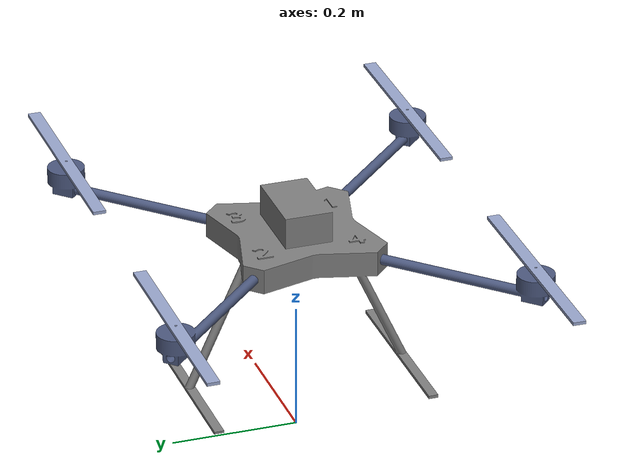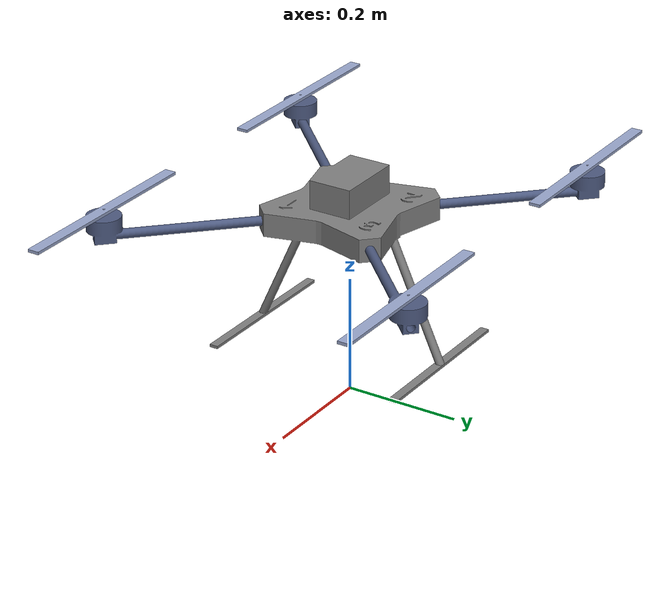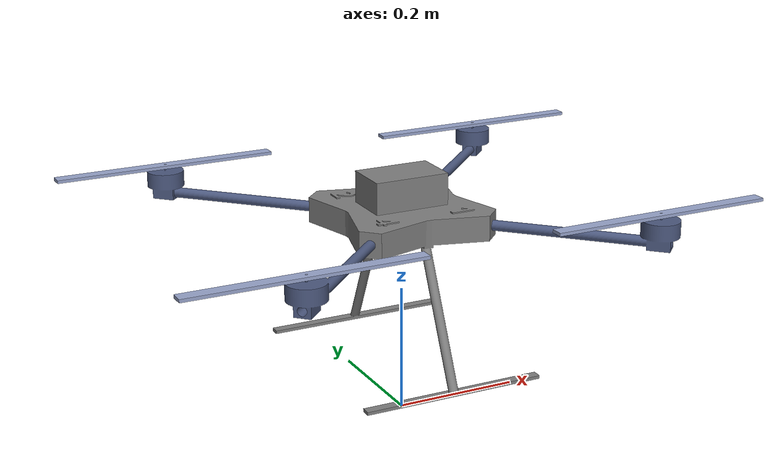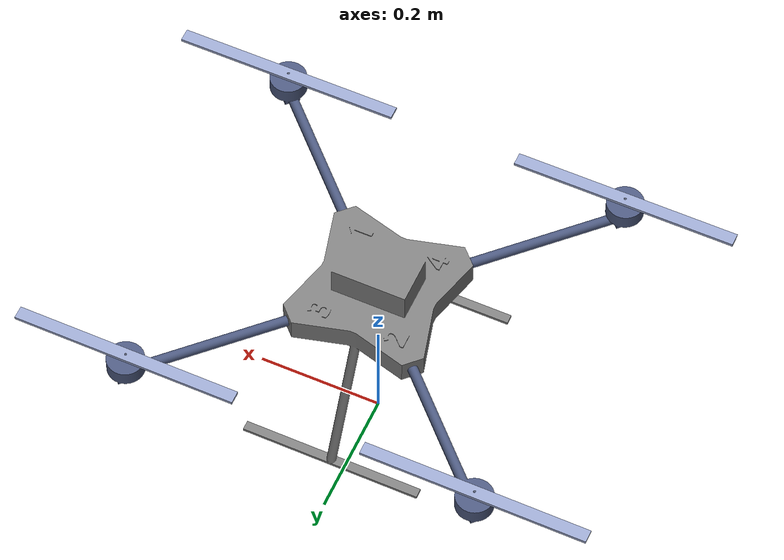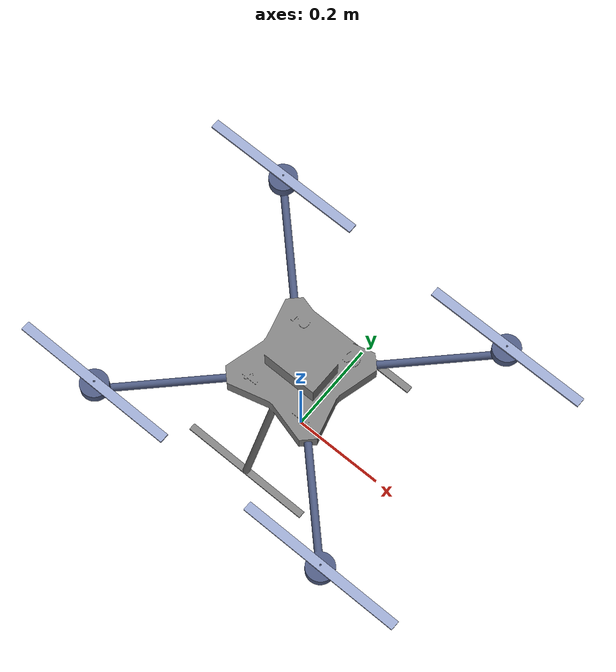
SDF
<?xml version="1.0" encoding="UTF-8"?>
<sdf version='1.9'>
  <model name='hillstar'>
    <pose>0 0 0.30 0 0 0</pose>
    <self_collide>false</self_collide>
    <static>false</static>
    <link name='base_link'>
      <pose>0 0 0 0 0 0</pose>
      <gravity>true</gravity>
      <velocity_decay/>
      <inertial>
        <mass>3.26</mass>
        <inertia>
          <ixx>0.0205</ixx>
          <iyy>0.0177</iyy>
          <izz>0.0225</izz>
          <ixy>0</ixy>
          <ixz>0</ixz>
          <iyz>0</iyz>
        </inertia>
      </inertial>
      <collision name="collision_base_link">
        <pose>0 0 0.0425 0 0 0</pose>
        <geometry>
          <box>
            <size>0.20 0.20 0.095</size>
          </box>
        </geometry>
      </collision>
      <collision name="collision_leg_left">
        <pose>0 -0.1715 -0.2075 0 0 0</pose>
        <geometry>
          <box>
            <size>0.29 0.015 0.005</size>
          </box>
        </geometry>
      </collision>
      <collision name="collision_leg_right">
        <pose>0 0.1715 -0.2075 0 0 0</pose>
        <geometry>
          <box>
            <size>0.29 0.015 0.005</size>
          </box>
        </geometry>
      </collision>
      <visual name='visual_base_link'>
        <pose>0 0 0 0 0 0</pose>
        <geometry>
          <mesh>
          <uri>model://hillstar/stl_files/body_frame_subassembly.stl</uri>
          </mesh>
        </geometry>
        <material>
          <ambient>0.2 0.2 0.2 1</ambient>
          <diffuse>0.5 0.5 0.5 1</diffuse>
          <specular>0.25 0.25 0.25 1</specular>
        </material>
      </visual>
      <collision name="collision_gripper_mount">
        <pose>0 0 -0.015 0 0 0</pose>
        <geometry>
          <cylinder><radius>0.035</radius><length>0.02</length></cylinder>
        </geometry>
      </collision>
      <visual name="visual_gripper_mount">
        <pose>0 0 -0.015 0 0 0</pose>
        <geometry>
          <cylinder><radius>0.035</radius><length>0.02</length></cylinder>
        </geometry>
        <material>
          <ambient>0.2 0.2 0.2 1</ambient>
          <diffuse>0.3 0.3 0.3 1</diffuse>
        </material>
      </visual>

      <!-- the sensors attached on the main body should go here -->
      <sensor name="air_pressure_sensor" type="air_pressure">
        <always_on>1</always_on>
        <update_rate>50</update_rate>
        <air_pressure>
          <pressure>
            <noise type="gaussian">
              <mean>0</mean>
              <stddev>0.01</stddev>
            </noise>
          </pressure>
        </air_pressure>
      </sensor>
      <sensor name="imu_sensor" type="imu">
        <always_on>1</always_on>
        <update_rate>250</update_rate>
        <imu>
          <angular_velocity>
            <x>
              <noise type="gaussian">
                <mean>0</mean>
                <stddev>0.00018665</stddev>
                <dynamic_bias_stddev>3.8785e-05</dynamic_bias_stddev>
                <dynamic_bias_correlation_time>1000</dynamic_bias_correlation_time>
              </noise>
            </x>
            <y>
              <noise type="gaussian">
                <mean>0</mean>
                <stddev>0.00018665</stddev>
                <dynamic_bias_stddev>3.8785e-05</dynamic_bias_stddev>
                <dynamic_bias_correlation_time>1000</dynamic_bias_correlation_time>
              </noise>
            </y>
            <z>
              <noise type="gaussian">
                <mean>0</mean>
                <stddev>0.00018665</stddev>
                <dynamic_bias_stddev>3.8785e-05</dynamic_bias_stddev>
                <dynamic_bias_correlation_time>1000</dynamic_bias_correlation_time>
              </noise>
            </z>
          </angular_velocity>
          <linear_acceleration>
            <x>
              <noise type="gaussian">
                <mean>0</mean>
                <stddev>0.00186</stddev>
                <dynamic_bias_stddev>0.006</dynamic_bias_stddev>
                <dynamic_bias_correlation_time>300</dynamic_bias_correlation_time>
              </noise>
            </x>
            <y>
              <noise type="gaussian">
                <mean>0</mean>
                <stddev>0.00186</stddev>
                <dynamic_bias_stddev>0.006</dynamic_bias_stddev>
                <dynamic_bias_correlation_time>300</dynamic_bias_correlation_time>
              </noise>
            </y>
            <z>
              <noise type="gaussian">
                <mean>0</mean>
                <stddev>0.00186</stddev>
                <dynamic_bias_stddev>0.006</dynamic_bias_stddev>
                <dynamic_bias_correlation_time>300</dynamic_bias_correlation_time>
              </noise>
            </z>
          </linear_acceleration>
        </imu>
      </sensor>
      <sensor name="navsat_sensor" type="navsat">
        <always_on>1</always_on>
        <update_rate>30</update_rate>
      </sensor>

      <!-- Forward/down-looking RGB camera for future AprilTag-based -->
      <!-- perception. Rigidly mounted under the front of the body (no -->
      <!-- separate link/joint needed - it never moves relative to base_link), -->
      <!-- pitched 30 deg down from horizontal so it naturally frames the -->
      <!-- sloped wall ahead during a level approach. horizontal_fov=110deg -->
      <!-- with a 4:3 image -->
      <sensor name="camera_sensor" type="camera">
        <pose>0.1 0 -0.03 0 0.5236 0</pose>
        <always_on>1</always_on>
        <update_rate>20</update_rate>
        <topic>hillstar/camera</topic>
        <camera>
          <horizontal_fov>1.91986</horizontal_fov>
          <image>
            <width>1280</width>
            <height>960</height>
            <format>R8G8B8</format>
          </image>
          <clip>
            <near>0.05</near>
            <far>50</far>
          </clip>
        </camera>
      </sensor>
    </link>

    <!-- ARM - 0 -->
    <!-- The link for individual arm assembly -->
    <link name = "arm_0">
      <gravity>true</gravity>
      <self_collide>false</self_collide>
      <velocity_decay/>
      <pose>0.102 -0.102 0.02 0 0 0.785</pose>
      <inertial>
        <mass>0.2</mass>
          <inertia>
            <ixx>9.1e-4</ixx>
            <iyy>7.1e-5</iyy>
            <izz>9.1e-4</izz>
          </inertia>
      </inertial>
      <visual name='visual_arm_assembly_0'>
        <pose>0 0 0 0 0 0</pose>
        <geometry>
          <mesh>
            <uri>model://hillstar/stl_files/arm.stl</uri>
          </mesh>
        </geometry>
        <material>
          <ambient>0.25 0.3 0.4 1.0</ambient>
          <diffuse>0.3 0.35 0.5 1.0</diffuse>
          <specular>0.3 0.3 0.3 1.0</specular>
          <emissive>0.0 0.0 0.0 0.0</emissive>
        </material>
      </visual>
      <collision name='collision_arm_assembly_0'>
        <pose>0 -0.135 0 0 0 0</pose>
        <!-- origin is at the mounting point, shifting it to Center of Geometry -->
        <geometry>
          <box>
            <size>0.06 0.27 0.045</size>
          </box>
        </geometry>
      </collision>
    </link>

    <!-- The joint for tilting arm_0 -->
    <joint name="tilt_arm_0" type="revolute">
      <parent>base_link</parent>
      <child>arm_0</child>
      <axis>
        <xyz>0 -1 0</xyz>
        <limit>
          <lower>-1.5707</lower>
          <upper>1.5707</upper>
          <effort>3.5</effort>
          <velocity>6.0</velocity>
        </limit>
        <dynamics>
          <damping>0.2</damping>
          <friction>0.025</friction>
        </dynamics>
      </axis>
    </joint>

    <!-- Joint Control for the tilting motor-0 -->
    <plugin filename="gz-sim-joint-position-controller-system" name="gz::sim::systems::JointPositionController">
      <joint_name>tilt_arm_0</joint_name>
      <initial_position>0</initial_position>
      <sub_topic>servo_0</sub_topic>
      <p_gain>8.0</p_gain>
      <i_gain>0.1</i_gain>
      <d_gain>0.3</d_gain>
    </plugin>

    <!-- Link for the propeller-0 -->
    <link name = "prop_0">
      <gravity>true</gravity>
      <self_collide>false</self_collide>
      <velocity_decay/>
      <pose>0.28 -0.28 0.06 0 0 0</pose>
      <inertial>
        <mass>0.025</mass>
          <inertia>
            <ixx>8.8e-07</ixx>
            <iyy>2.6e-04</iyy>
            <izz>2.6e-04</izz>
          </inertia>
      </inertial>
      <visual name='visual_prop_0'>
        <geometry>
          <mesh>
            <uri>model://hillstar/stl_files/prop.stl</uri>
          </mesh>
        </geometry>
        <material>
          <ambient>0.3 0.32 0.36 1</ambient>
          <diffuse>0.6 0.65 0.8 1</diffuse>
          <specular>0.4 0.45 0.55 1</specular>
        </material>
      </visual>
      <collision name='collision_prop_0'>
        <geometry>
          <mesh>
            <uri>model://hillstar/stl_files/prop.stl</uri>
          </mesh>
        </geometry>
      </collision>
    </link>

    <!-- Joint for the propeller-0 -->
    <joint name="rotor_0_joint" type="revolute">
      <parent>arm_0</parent>
      <child>prop_0</child>
      <axis>
        <xyz>0 0 1</xyz>
        <dynamics>
          <spring_reference>0</spring_reference>
          <spring_stiffness>0</spring_stiffness>
        </dynamics>
      </axis>
    </joint>

    <!-- Motor object for the propeller-0 -->
    <plugin filename="gz-sim-multicopter-motor-model-system" name="gz::sim::systems::MulticopterMotorModel">
      <jointName>rotor_0_joint</jointName>
      <linkName>prop_0</linkName>
      <turningDirection>ccw</turningDirection>
      <timeConstantUp>0.015</timeConstantUp>
      <timeConstantDown>0.03</timeConstantDown>
      <maxRotVelocity>855</maxRotVelocity>
      <motorConstant>3.5e-5</motorConstant>
      <momentConstant>0.017</momentConstant>
      <commandSubTopic>command/motor_speed</commandSubTopic>
      <motorNumber>0</motorNumber>
      <rotorDragCoefficient>8.06428e-05</rotorDragCoefficient>
      <rollingMomentCoefficient>1e-06</rollingMomentCoefficient>
      <rotorVelocitySlowdownSim>10</rotorVelocitySlowdownSim>
      <motorType>velocity</motorType>
    </plugin>

    <!-- ARM - 1 -->
    <!-- The link for individual arm assembly -->
    <link name = "arm_1">
      <gravity>true</gravity>
      <self_collide>false</self_collide>
      <velocity_decay/>
      <pose>-0.102 0.102 0.02 0 0 -2.356</pose>
      <inertial>
        <mass>0.2</mass>
          <inertia>
            <ixx>9.1e-4</ixx>
            <iyy>7.1e-5</iyy>
            <izz>9.1e-4</izz>
          </inertia>
      </inertial>
      <visual name='visual_arm_assembly_1'>
        <pose>0 0 0 0 0 0</pose>
        <geometry>
          <mesh>
            <uri>model://hillstar/stl_files/arm.stl</uri>
          </mesh>
        </geometry>
        <material>
          <ambient>0.25 0.3 0.4 1.0</ambient>
          <diffuse>0.3 0.35 0.5 1.0</diffuse>
          <specular>0.3 0.3 0.3 1.0</specular>
          <emissive>0.0 0.0 0.0 0.0</emissive>
        </material>
      </visual>
      <collision name='collision_arm_assembly_1'>
        <pose>0 -0.135 0 0 0 0</pose>
        <!-- origin is at the mounting point, shifting it to Center of Geometry -->
        <geometry>
          <box>
            <size>0.06 0.27 0.045</size>
          </box>
        </geometry>
      </collision>
    </link>

    <!-- The joint for tilting arm_1 -->
    <joint name="tilt_arm_1" type="revolute">
      <parent>base_link</parent>
      <child>arm_1</child>
      <axis>
        <xyz>0 -1 0</xyz>
        <limit>
          <lower>-1.5707</lower>
          <upper>1.5707</upper>
          <effort>3.5</effort>
          <velocity>6.0</velocity>
        </limit>
        <dynamics>
          <damping>0.2</damping>
          <friction>0.025</friction>
        </dynamics>
      </axis>
    </joint>

    <!-- Joint Control for the tilting motor-1 -->
    <plugin filename="gz-sim-joint-position-controller-system" name="gz::sim::systems::JointPositionController">
      <joint_name>tilt_arm_1</joint_name>
      <initial_position>0</initial_position>
      <sub_topic>servo_1</sub_topic>
      <p_gain>8.0</p_gain>
      <i_gain>0.1</i_gain>
      <d_gain>0.3</d_gain>
    </plugin>

    <!-- Link for the propeller-1 -->
    <link name = "prop_1">
      <gravity>true</gravity>
      <self_collide>false</self_collide>
      <velocity_decay/>
      <pose>-0.28 0.28 0.06 0 0 0</pose>
      <inertial>
        <mass>0.025</mass>
          <inertia>
            <ixx>8.8e-07</ixx>
            <iyy>2.6e-04</iyy>
            <izz>2.6e-04</izz>
          </inertia>
      </inertial>
      <visual name='visual_prop_1'>
        <geometry>
          <mesh>
            <uri>model://hillstar/stl_files/prop.stl</uri>
          </mesh>
        </geometry>
        <material>
          <ambient>0.3 0.32 0.36 1</ambient>
          <diffuse>0.6 0.65 0.8 1</diffuse>
          <specular>0.4 0.45 0.55 1</specular>
        </material>
      </visual>
      <collision name='collision_prop_1'>
        <geometry>
          <mesh>
            <uri>model://hillstar/stl_files/prop.stl</uri>
          </mesh>
        </geometry>
      </collision>
    </link>

    <!-- Joint for the propeller-1 -->
    <joint name="rotor_1_joint" type="revolute">
      <parent>arm_1</parent>
      <child>prop_1</child>
      <axis>
        <xyz>0 0 1</xyz>
        <dynamics>
          <spring_reference>0</spring_reference>
          <spring_stiffness>0</spring_stiffness>
        </dynamics>
      </axis>
    </joint>

    <!-- Motor object for the propeller-1 -->
    <plugin filename="gz-sim-multicopter-motor-model-system" name="gz::sim::systems::MulticopterMotorModel">
      <jointName>rotor_1_joint</jointName>
      <linkName>prop_1</linkName>
      <turningDirection>ccw</turningDirection>
      <timeConstantUp>0.015</timeConstantUp>
      <timeConstantDown>0.03</timeConstantDown>
      <maxRotVelocity>855</maxRotVelocity>
      <motorConstant>3.5e-5</motorConstant>
      <momentConstant>0.017</momentConstant>
      <commandSubTopic>command/motor_speed</commandSubTopic>
      <motorNumber>1</motorNumber>
      <rotorDragCoefficient>8.06428e-05</rotorDragCoefficient>
      <rollingMomentCoefficient>1e-06</rollingMomentCoefficient>
      <rotorVelocitySlowdownSim>10</rotorVelocitySlowdownSim>
      <motorType>velocity</motorType>
    </plugin>

    <!-- ARM - 2 -->
    <!-- The link for individual arm assembly -->
    <link name = "arm_2">
      <gravity>true</gravity>
      <self_collide>false</self_collide>
      <velocity_decay/>
      <pose>0.102 0.102 0.02 0 0 2.356</pose>
      <inertial>
        <mass>0.2</mass>
          <inertia>
            <ixx>9.1e-4</ixx>
            <iyy>7.1e-5</iyy>
            <izz>9.1e-4</izz>
          </inertia>
      </inertial>
      <visual name='visual_arm_assembly_2'>
        <pose>0 0 0 0 0 0</pose>
        <geometry>
          <mesh>
            <uri>model://hillstar/stl_files/arm.stl</uri>
          </mesh>
        </geometry>
        <material>
          <ambient>0.25 0.3 0.4 1.0</ambient>
          <diffuse>0.3 0.35 0.5 1.0</diffuse>
          <specular>0.3 0.3 0.3 1.0</specular>
          <emissive>0.0 0.0 0.0 0.0</emissive>
        </material>
      </visual>
      <collision name='collision_arm_assembly_2'>
        <pose>0 -0.135 0 0 0 0</pose>
        <!-- origin is at the mounting point, shifting it to Center of Geometry -->
        <geometry>
          <box>
            <size>0.06 0.27 0.045</size>
          </box>
        </geometry>
      </collision>
    </link>

    <!-- The joint for tilting arm_2 -->
    <joint name="tilt_arm_2" type="revolute">
      <parent>base_link</parent>
      <child>arm_2</child>
      <axis>
        <xyz>0 -1 0</xyz>
        <limit>
          <lower>-1.5707</lower>
          <upper>1.5707</upper>
          <effort>3.5</effort>
          <velocity>6.0</velocity>
        </limit>
        <dynamics>
          <damping>0.2</damping>
          <friction>0.025</friction>
        </dynamics>
      </axis>
    </joint>

    <!-- Joint Control for the tilting motor-2 -->
    <plugin filename="gz-sim-joint-position-controller-system" name="gz::sim::systems::JointPositionController">
      <joint_name>tilt_arm_2</joint_name>
      <initial_position>0</initial_position>
      <sub_topic>servo_2</sub_topic>
      <p_gain>8.0</p_gain>
      <i_gain>0.1</i_gain>
      <d_gain>0.3</d_gain>
    </plugin>

    <!-- Link for the propeller-2 -->
    <link name = "prop_2">
      <gravity>true</gravity>
      <self_collide>false</self_collide>
      <velocity_decay/>
      <pose>0.28 0.28 0.06 0 0 0</pose>
      <inertial>
        <mass>0.025</mass>
          <inertia>
            <ixx>8.8e-07</ixx>
            <iyy>2.6e-04</iyy>
            <izz>2.6e-04</izz>
          </inertia>
      </inertial>
      <visual name='visual_prop_2'>
        <geometry>
          <mesh>
            <uri>model://hillstar/stl_files/prop.stl</uri>
          </mesh>
        </geometry>
        <material>
          <ambient>0.3 0.32 0.36 1</ambient>
          <diffuse>0.6 0.65 0.8 1</diffuse>
          <specular>0.4 0.45 0.55 1</specular>
        </material>
      </visual>
      <collision name='collision_prop_2'>
        <geometry>
          <mesh>
            <uri>model://hillstar/stl_files/prop.stl</uri>
          </mesh>
        </geometry>
      </collision>
    </link>

    <!-- Joint for the propeller-2 -->
    <joint name="rotor_2_joint" type="revolute">
      <parent>arm_2</parent>
      <child>prop_2</child>
      <axis>
        <xyz>0 0 1</xyz>
        <dynamics>
          <spring_reference>0</spring_reference>
          <spring_stiffness>0</spring_stiffness>
        </dynamics>
      </axis>
    </joint>

    <!-- Motor object for the propeller-2 -->
    <plugin filename="gz-sim-multicopter-motor-model-system" name="gz::sim::systems::MulticopterMotorModel">
      <jointName>rotor_2_joint</jointName>
      <linkName>prop_2</linkName>
      <turningDirection>cw</turningDirection>
      <timeConstantUp>0.015</timeConstantUp>
      <timeConstantDown>0.03</timeConstantDown>
      <maxRotVelocity>855</maxRotVelocity>
      <motorConstant>3.5e-5</motorConstant>
      <momentConstant>0.017</momentConstant>
      <commandSubTopic>command/motor_speed</commandSubTopic>
      <motorNumber>2</motorNumber>
      <rotorDragCoefficient>8.06428e-05</rotorDragCoefficient>
      <rollingMomentCoefficient>1e-06</rollingMomentCoefficient>
      <rotorVelocitySlowdownSim>10</rotorVelocitySlowdownSim>
      <motorType>velocity</motorType>
    </plugin>

        <!-- ARM - 3 -->
    <!-- The link for individual arm assembly -->
    <link name = "arm_3">
      <gravity>true</gravity>
      <self_collide>false</self_collide>
      <velocity_decay/>
      <pose>-0.102 -0.102 0.02 0 0 -0.785</pose>
      <inertial>
        <mass>0.2</mass>
          <inertia>
            <ixx>9.1e-4</ixx>
            <iyy>7.1e-5</iyy>
            <izz>9.1e-4</izz>
          </inertia>
      </inertial>
      <visual name='visual_arm_assembly_3'>
        <pose>0 0 0 0 0 0</pose>
        <geometry>
          <mesh>
            <uri>model://hillstar/stl_files/arm.stl</uri>
          </mesh>
        </geometry>
        <material>
          <ambient>0.25 0.3 0.4 1.0</ambient>
          <diffuse>0.3 0.35 0.5 1.0</diffuse>
          <specular>0.3 0.3 0.3 1.0</specular>
          <emissive>0.0 0.0 0.0 0.0</emissive>
        </material>
      </visual>
      <collision name='collision_arm_assembly_3'>
        <pose>0 -0.135 0 0 0 0</pose>
        <!-- origin is at the mounting point, shifting it to Center of Geometry -->
        <geometry>
          <box>
            <size>0.06 0.27 0.045</size>
          </box>
        </geometry>
      </collision>
    </link>

    <!-- The joint for tilting arm_3 -->
    <joint name="tilt_arm_3" type="revolute">
      <parent>base_link</parent>
      <child>arm_3</child>
      <axis>
        <xyz>0 -1 0</xyz>
        <limit>
          <lower>-1.5707</lower>
          <upper>1.5707</upper>
          <effort>3.5</effort>
          <velocity>6.0</velocity>
        </limit>
        <dynamics>
          <damping>0.2</damping>
          <friction>0.025</friction>
        </dynamics>
      </axis>
    </joint>

    <!-- Joint Control for the tilting motor-3 -->
    <plugin filename="gz-sim-joint-position-controller-system" name="gz::sim::systems::JointPositionController">
      <joint_name>tilt_arm_3</joint_name>
      <initial_position>0</initial_position>
      <sub_topic>servo_3</sub_topic>
      <p_gain>8.0</p_gain>
      <i_gain>0.1</i_gain>
      <d_gain>0.3</d_gain>
    </plugin>

    <!-- Link for the propeller-3 -->
    <link name = "prop_3">
      <gravity>true</gravity>
      <self_collide>false</self_collide>
      <velocity_decay/>
      <pose>-0.28 -0.28 0.06 0 0 0</pose>
      <inertial>
        <mass>0.025</mass>
          <inertia>
            <ixx>8.8e-07</ixx>
            <iyy>2.6e-04</iyy>
            <izz>2.6e-04</izz>
          </inertia>
      </inertial>
      <visual name='visual_prop_3'>
        <geometry>
          <mesh>
            <uri>model://hillstar/stl_files/prop.stl</uri>
          </mesh>
        </geometry>
        <material>
          <ambient>0.3 0.32 0.36 1</ambient>
          <diffuse>0.6 0.65 0.8 1</diffuse>
          <specular>0.4 0.45 0.55 1</specular>
        </material>
      </visual>
      <collision name='collision_prop_3'>
        <geometry>
          <mesh>
            <uri>model://hillstar/stl_files/prop.stl</uri>
          </mesh>
        </geometry>
      </collision>
    </link>

    <!-- Joint for the propeller-3 -->
    <joint name="rotor_3_joint" type="revolute">
      <parent>arm_3</parent>
      <child>prop_3</child>
      <axis>
        <xyz>0 0 1</xyz>
        <dynamics>
          <spring_reference>0</spring_reference>
          <spring_stiffness>0</spring_stiffness>
        </dynamics>
      </axis>
    </joint>

    <!-- Motor object for the propeller-3 -->
    <plugin filename="gz-sim-multicopter-motor-model-system" name="gz::sim::systems::MulticopterMotorModel">
      <jointName>rotor_3_joint</jointName>
      <linkName>prop_3</linkName>
      <turningDirection>cw</turningDirection>
      <timeConstantUp>0.015</timeConstantUp>
      <timeConstantDown>0.03</timeConstantDown>
      <maxRotVelocity>855</maxRotVelocity>
      <motorConstant>3.5e-5</motorConstant>
      <momentConstant>0.017</momentConstant>
      <commandSubTopic>command/motor_speed</commandSubTopic>
      <motorNumber>3</motorNumber>
      <rotorDragCoefficient>8.06428e-05</rotorDragCoefficient>
      <rollingMomentCoefficient>1e-06</rollingMomentCoefficient>
      <rotorVelocitySlowdownSim>10</rotorVelocitySlowdownSim>
      <motorType>velocity</motorType>
    </plugin>

    <plugin filename="gz-sim-joint-state-publisher-system" name="gz::sim::systems::JointStatePublisher">
      <topic>/hillstar/tilt_angles</topic>
      <joint_name>tilt_arm_0</joint_name>
      <joint_name>tilt_arm_1</joint_name>
      <joint_name>tilt_arm_2</joint_name>
      <joint_name>tilt_arm_3</joint_name>
    </plugin>

    <plugin filename="gz-sim-odometry-publisher-system" name="gz::sim::systems::OdometryPublisher">
      <dimensions>3</dimensions>
      <odom_frame>odom</odom_frame>
      <robot_base_frame>base_link</robot_base_frame>
    </plugin>

  </model>
</sdf>
